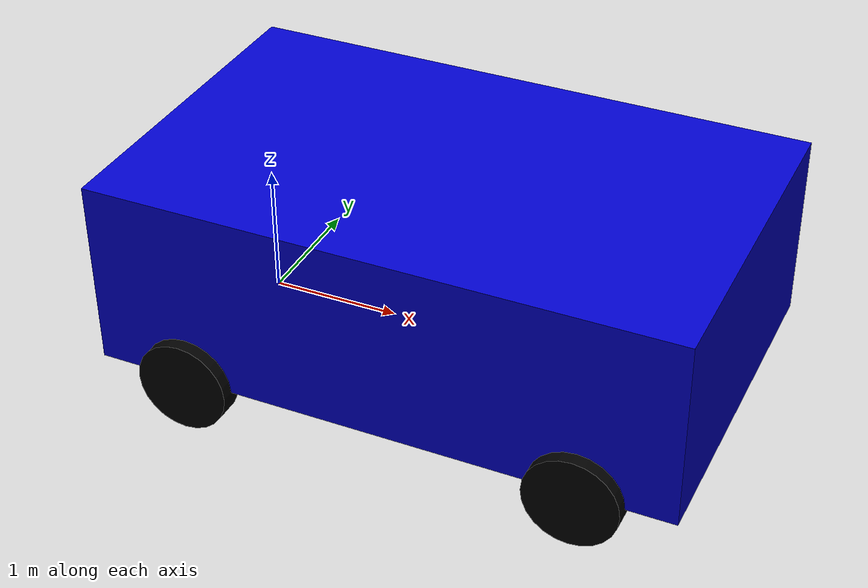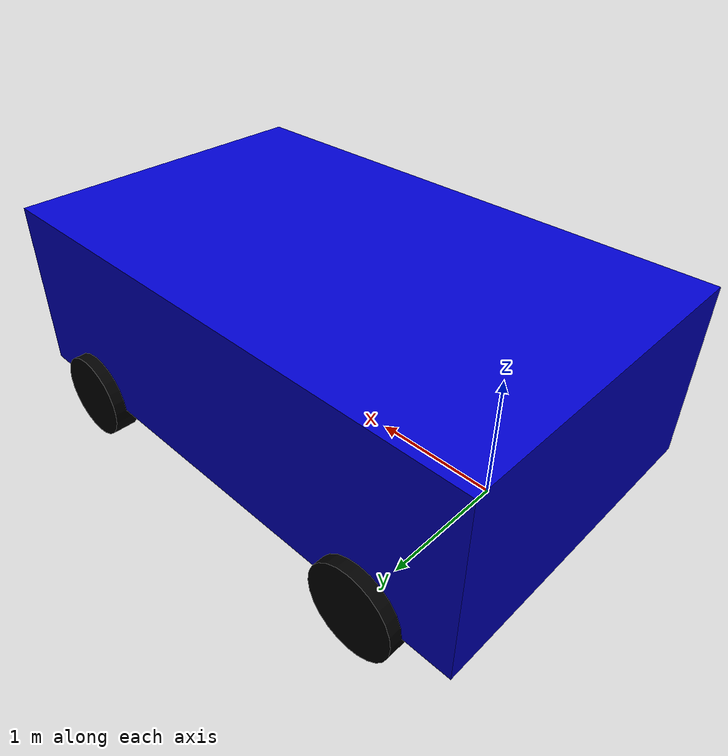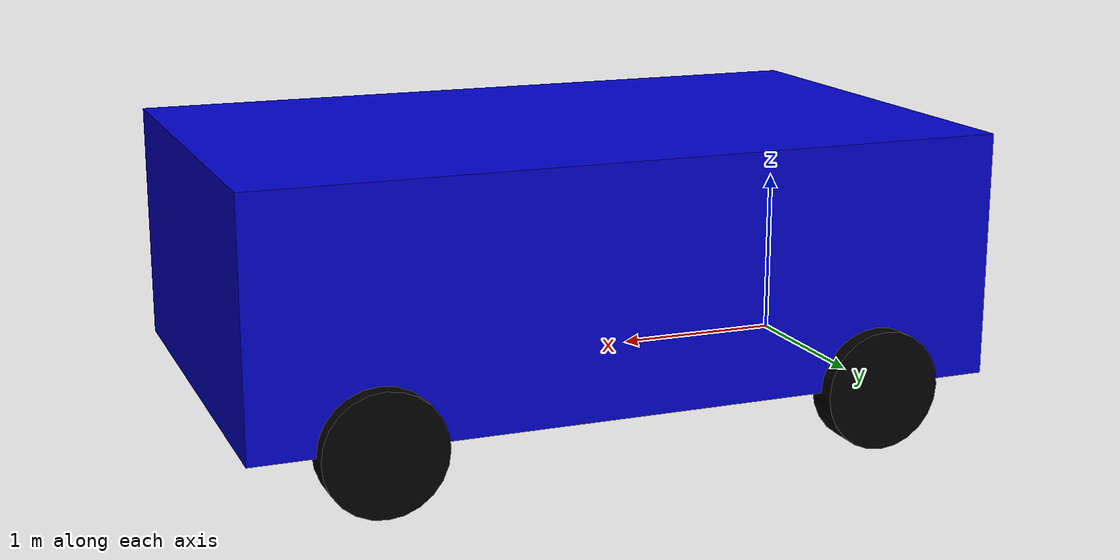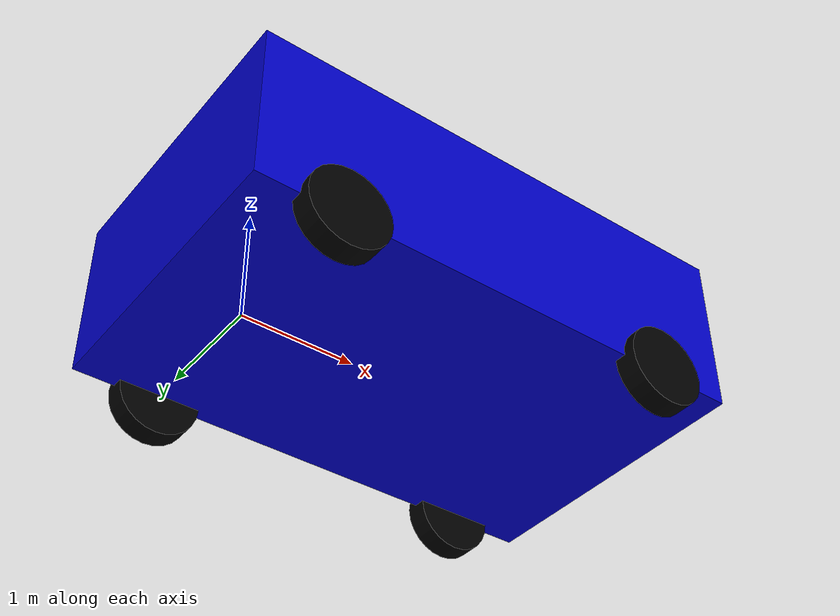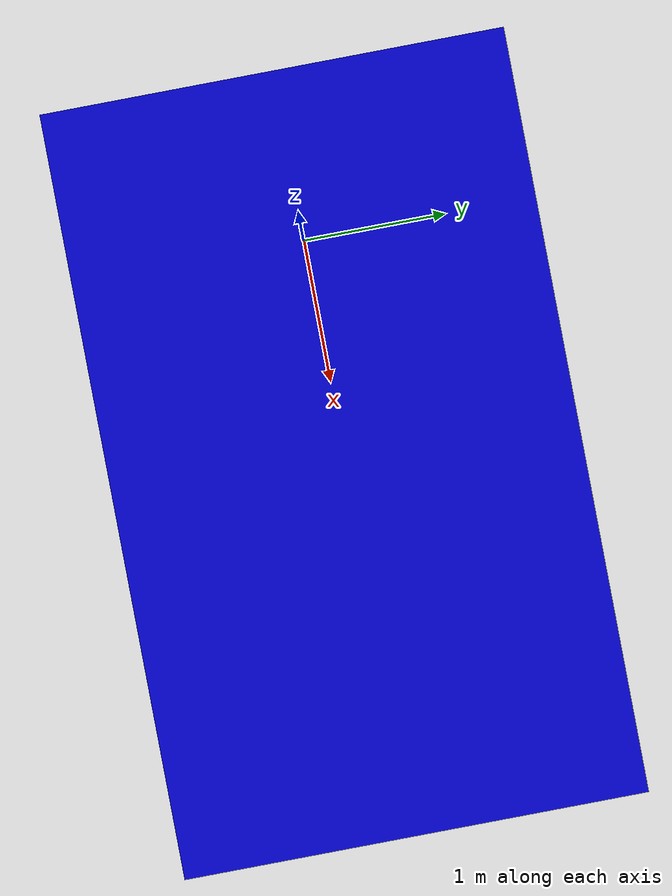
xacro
<?xml version="1.0"?>
<robot name="ackermann" xmlns:xacro="http://ros.org/wiki/xacro">

  <!-- Dimensions taken 2019 from Chevy Cruze https://www.caranddriver.com/chevrolet/cruze/specs -->

  <!-- Evaluate any parameters passed in and make them properties, which can be used for math operations -->

  <!-- Mass in kilograms -->
  <xacro:arg name="chassis_mass" default="1351" />
  <xacro:property name="chassis_mass" value="$(arg chassis_mass)" />
  <xacro:arg name="wheel_mass" default="11" />
  <xacro:property name="wheel_mass" value="$(arg wheel_mass)" />
  <!-- Length in meters -->
  <xacro:arg name="chassis_length" default="4.45"/>
  <xacro:property name="chassis_length" value="$(arg chassis_length)" />
  <xacro:arg name="chassis_width" default="2.7" />
  <xacro:property name="chassis_width" value="$(arg chassis_width)" />
  <xacro:arg name="chassis_height" default="1.45" />
  <xacro:property name="chassis_height" value="$(arg chassis_height)" />
  <xacro:arg name="wheel_radius" default="0.3556" />
  <xacro:property name="wheel_radius" value="$(arg wheel_radius)" />
  <xacro:arg name="wheel_depth" default="0.2" />
  <xacro:property name="wheel_depth" value="$(arg wheel_depth)" />
  <xacro:arg name="wheelbase" default="3" />
  <xacro:property name="wheelbase" value="$(arg wheelbase)" />
  <!-- Limits -->
  <xacro:arg name="steering_limit_degrees" default="27" />
  <xacro:property name="steering_limit_degrees" value="$(arg steering_limit_degrees)" />
  <!-- Topic Names -->
  <xacro:arg name="vehicle_odom_topic" default="ground_truth" />
  <xacro:property name="vehicle_odom_topic" value="$(arg vehicle_odom_topic)" />
  <xacro:arg name="vehicle_control_topic" default="cmd_vel" />
  <xacro:property name="vehicle_control_topic" value="$(arg vehicle_control_topic)" />

  <!-- Material colors -->
  <material name="blue">
    <color rgba="0 0 0.8 1"/>
  </material>

  <material name="black">
    <color rgba="0 0 0 1"/>
  </material>

  <material name="white">
    <color rgba="1 1 1 1"/>
  </material>

  <!-- Moment of inertia formulas gotten from wikipedia: https://en.wikipedia.org/wiki/List_of_moments_of_inertia#List_of_3D_inertia_tensors -->
  <xacro:macro name="solid_cylinder_inertial" params="mass r d">
    <inertial>
      <mass value="${mass}" />
      <inertia  ixx="${(1/12)*mass*(3*r*r + d*d)}" ixy="0.0" ixz="0.0" iyy="${(1/2)*mass*r*r}" iyz="0.0" izz="${(1/12)*mass*(3*r*r + d*d)}" />
    </inertial>
  </xacro:macro>

  <xacro:macro name="box_inertial" params="mass h w l">
    <inertial>
      <mass value="${mass}" />
      <inertia ixx="${(1/12)*mass*(w*w + h*h)}" ixy="0.0" ixz="0.0" iyy="${(1/12)*mass*(h*h + l*l)}" iyz="0.0" izz="${(1/12)*mass*(w*w + l*l)}"/>
    </inertial>
  </xacro:macro>

  <!-- Base link should not have inertia -->
  <link name="base_link"/>

  <joint name="base_link_connection" type="fixed">
    <parent link="base_link"/>
    <child link="chassis"/>
    <origin xyz="${wheelbase/2} 0 ${chassis_height/2}" rpy="0 0 0"/>
    <axis xyz="1 0 0"/>
  </joint>

  <!-- Vehicle chassis -->
  <link name="chassis">
    <visual>
      <geometry>
        <box size="${chassis_length} ${chassis_width} ${chassis_height}"/>
      </geometry>
      <material name="blue"/>
    </visual>
    <collision>
      <geometry>
        <box size="${chassis_length} ${chassis_width} ${chassis_height}"/>
      </geometry>
    </collision>
    <xacro:box_inertial mass="${chassis_mass}" h="${chassis_height}" w="${chassis_width}" l="${chassis_length}"/>
  </link>

  <!-- xacro for wheels -->
  <xacro:macro name="wheel" params="side location steer">
    <link name="${location}_${side}_wheel">
      <visual>
        <origin xyz="0 0 0" rpy="${pi/2} 0 0" />
        <geometry>
          <cylinder radius="${wheel_radius}" length="${wheel_depth}"/>
        </geometry>
        <material name="black"/>
      </visual>
      <collision>
        <origin xyz="0 0 0" rpy="${pi/2} 0 0" />
        <geometry>
          <cylinder radius="${wheel_radius}" length="${wheel_depth}"/>
        </geometry>
      </collision>
      <xacro:solid_cylinder_inertial mass="${wheel_mass}" r="${wheel_radius}" d="${wheel_depth}"/>
    </link>

    <joint name="${location}_${side}_wheel_velocity_joint" type="continuous">
      <axis xyz="0 1 0" rpy="0 0 0" />
      <parent link="${location}_${side}_linkage"/>
      <child link="${location}_${side}_wheel"/>
      <origin xyz="0 0 0" rpy="0 0 0"/>
    </joint>

    <!-- This block provides the simulator (Gazebo) with information on a few additional
    physical properties. See http://gazebosim.org/tutorials/?tut=ros_urdf for more-->
    <gazebo reference="${location}_${side}_wheel">
      <mu1>0.9</mu1>
      <mu2>0.9</mu2>
      <minDepth>0.005</minDepth>
      <kp>1e8</kp>
      <material>Gazebo/Grey</material>
    </gazebo>
  </xacro:macro>

  <!-- xacro for linkages -->
  <xacro:macro name="linkage" params="location lon side lat steer">

    <link name="${location}_${side}_linkage">
      <visual>
        <origin xyz="0 0 0" rpy="${pi/2} 0 0" />
        <geometry>
          <cylinder radius=".05" length=".05"/>
        </geometry>
        <material name="white"/>
      </visual>
      <xacro:solid_cylinder_inertial mass="10" r=".1" d="${chassis_width/2}"/>
    </link>

    <xacro:if value="${steer}">
      <joint name="${location}_${side}_steer_joint" type="continuous">
        <axis xyz="0 0 1" rpy="0 0 0" />
        <parent link="chassis"/>
        <child link="${location}_${side}_linkage"/>
        <origin xyz="${wheelbase*lon/2} ${chassis_width*lat/2} -${chassis_height/2}" rpy="0 0 0"/>
      </joint>
    </xacro:if>

    <xacro:unless value="${steer}">
      <joint name="${location}_${side}_axel_joint" type="fixed">
        <axis xyz="0 0 1" rpy="0 0 0" />
        <parent link="chassis"/>
        <child link="${location}_${side}_linkage"/>
        <origin xyz="${wheelbase*lon/2} ${chassis_width*lat/2} -${chassis_height/2}" rpy="0 0 0"/>
      </joint>
    </xacro:unless>

    <xacro:wheel side="${side}" location="${location}" steer="${steer}"/>

  </xacro:macro>

  <xacro:linkage location="front" lon="1" side="left" lat="1" steer="true"/>
  <xacro:linkage location="front" lon="1" side="right" lat="-1" steer="true"/>
  <xacro:linkage location="back" lon="-1" side="left" lat="1" steer="false"/>
  <xacro:linkage location="back" lon="-1" side="right" lat="-1" steer="false"/>

  <!-- Specify Gazebo Plugins to be used in model -->
  <gazebo>
    <!-- Gazebo plugin for ROS Control -->
    <plugin name="gazebo_ros_control" filename="libgazebo_ros_control.so">
      <robotNamespace>/</robotNamespace>
    </plugin>

    <plugin name="ackermann_control_plugin" filename="libAckermannControlPlugin.so">
      <max_speed>35.7632</max_speed>
      <wheel_angular_velocity_p_gain>1e5</wheel_angular_velocity_p_gain>
      <wheel_angular_velocity_i_gain>0</wheel_angular_velocity_i_gain>
      <wheel_angular_velocity_d_gain>1e3</wheel_angular_velocity_d_gain>
      <wheel_steering_angle_p_gain>1e4</wheel_steering_angle_p_gain>
      <wheel_steering_angle_i_gain>0</wheel_steering_angle_i_gain>
      <wheel_steering_angle_d_gain>1e3</wheel_steering_angle_d_gain>
      <longitudinal_length_between_wheels>${wheelbase}</longitudinal_length_between_wheels>
      <lateral_width_between_wheels>${chassis_width}</lateral_width_between_wheels>
      <wheel_radius>${wheel_radius}</wheel_radius>
      <chassis_height>${chassis_height}</chassis_height>
      <vehicle_odom_topic>${vehicle_odom_topic}</vehicle_odom_topic>
      <vehicle_control_topic>${vehicle_control_topic}</vehicle_control_topic>
      <steering_limit_degrees>${steering_limit_degrees}</steering_limit_degrees>
    </plugin>
  </gazebo>

</robot>
